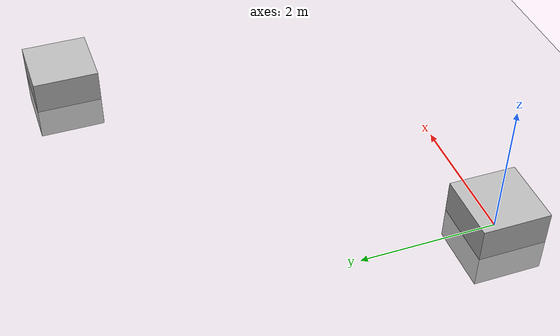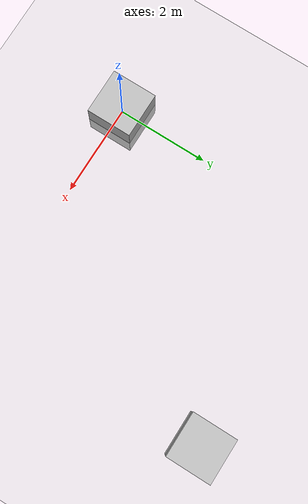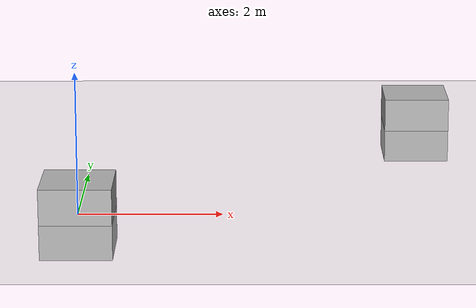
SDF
<?xml version="1.0" ?>
<sdf version="1.6">
  <world name="particle_emitters">

    <physics name="1ms" type="ode">
      <max_step_size>0.001</max_step_size>
      <real_time_factor>0</real_time_factor>
    </physics>

    <plugin
      filename="ignition-gazebo-particle-emitter2-system"
      name="ignition::gazebo::systems::ParticleEmitter2">
    </plugin>
    <plugin
      filename="ignition-gazebo-scene-broadcaster-system"
      name="ignition::gazebo::systems::SceneBroadcaster">
    </plugin>

    <light type="directional" name="sun">
      <cast_shadows>true</cast_shadows>
      <pose>0 0 10 0 0 0</pose>
      <diffuse>1 1 1 1</diffuse>
      <specular>0.5 0.5 0.5 1</specular>
      <attenuation>
        <range>1000</range>
        <constant>0.9</constant>
        <linear>0.01</linear>
        <quadratic>0.001</quadratic>
      </attenuation>
      <direction>-0.5 0.1 -0.9</direction>
    </light>

    <model name="ground_plane">
      <static>true</static>
      <link name="link">
        <collision name="collision">
          <geometry>
            <plane>
              <normal>0 0 1</normal>
            </plane>
          </geometry>
        </collision>
        <visual name="visual">
          <geometry>
            <plane>
              <normal>0 0 1</normal>
              <size>100 100</size>
            </plane>
          </geometry>
          <material>
            <ambient>0.8 0.8 0.8 1</ambient>
            <diffuse>0.8 0.8 0.8 1</diffuse>
            <specular>0.8 0.8 0.8 1</specular>
          </material>
        </visual>
      </link>
    </model>

    <!-- test custom parameters -->
    <model name="smoke_generator_demo_model">
      <pose>0 0 0 0 0 0</pose>
      <static>true</static>
      <link name="link">
        <visual name="visual">
          <geometry>
            <box>
              <size>1 1 1</size>
            </box>
          </geometry>
        </visual>
        <particle_emitter name="smoke_emitter" type="box">
          <pose>0 1 0 0 0 0</pose>
          <size>2 2 2</size>
          <rate>5</rate>
          <duration>1</duration>
          <emitting>true</emitting>
          <particle_size>3 3 3</particle_size>
          <lifetime>2</lifetime>
          <min_velocity>10</min_velocity>
          <max_velocity>20</max_velocity>
          <color_start>0 0 1</color_start>
          <color_end>0 1 0</color_end>
          <scale_rate>10</scale_rate>
          <color_range_image>/path/to/dummy_image.png</color_range_image>
          <particle_scatter_ratio>0.01</particle_scatter_ratio>
        </particle_emitter>
      </link>

    </model>

    <!-- test default parameters -->
    <model name="smoke_generator_demo_model_2">
      <pose>5 5 0 0 0 0</pose>
      <static>true</static>
      <link name="link">
        <visual name="visual">
          <geometry>
            <box>
              <size>1 1 1</size>
            </box>
          </geometry>
        </visual>
      </link>

      <plugin filename="ignition-gazebo-particle-emitter-system"
        name="ignition::gazebo::systems::ParticleEmitter">
      </plugin>
    </model>
  </world>
</sdf>
